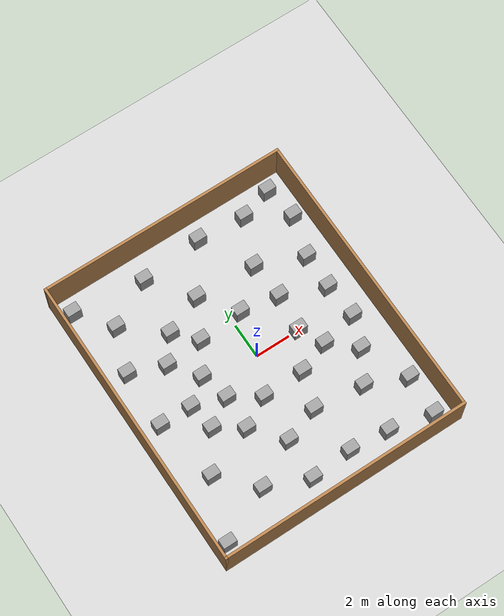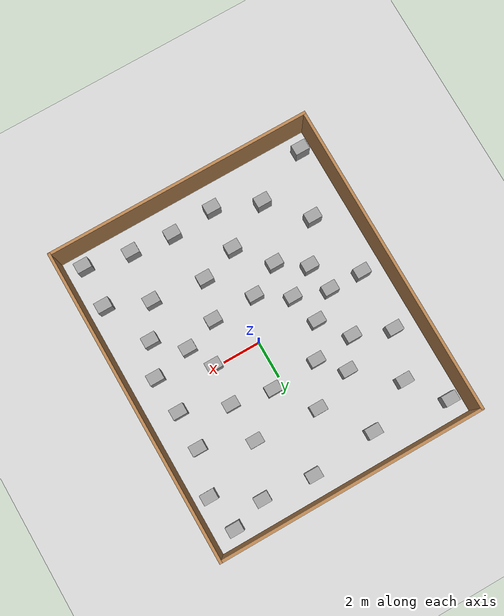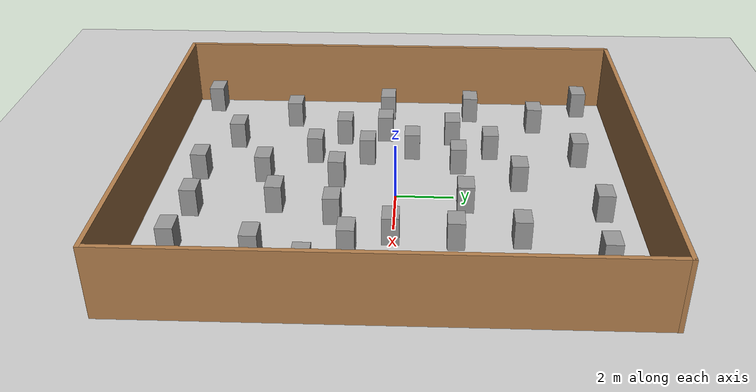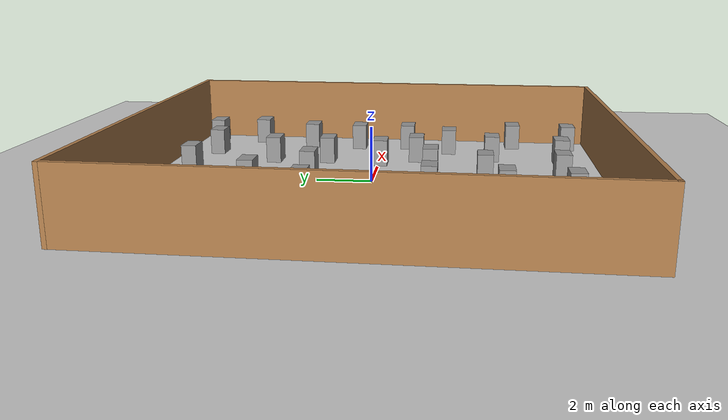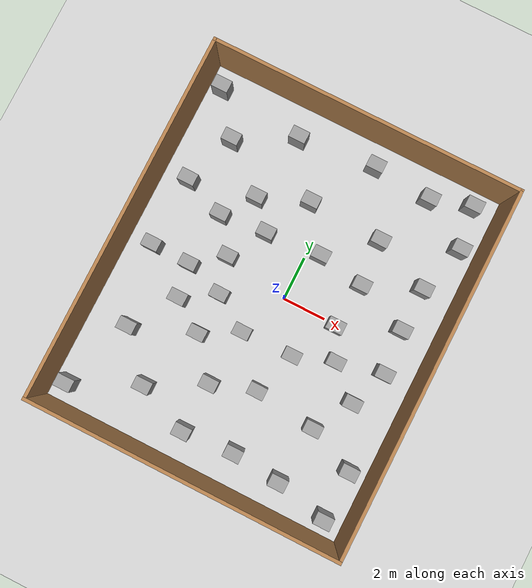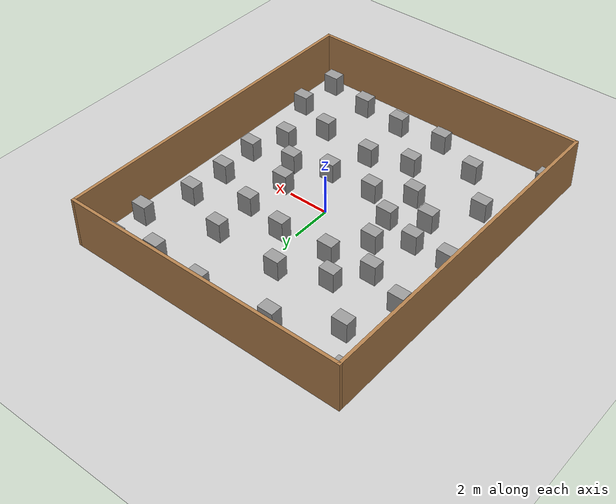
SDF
<sdf version="1.7">
 <world name="default">
  <model name="ground_plane">
   <static>1</static>
   <link name="link">
    <collision name="collision">
     <geometry><plane><normal>0 0 1</normal><size>100 100</size></plane></geometry>
     <surface><friction><ode><mu>100</mu><mu2>50</mu2></ode></friction></surface>
    </collision>
    <visual name="visual">
     <cast_shadows>0</cast_shadows>
     <geometry><plane><normal>0 0 1</normal><size>100 100</size></plane></geometry>
     <material>
      <script><uri>file://media/materials/scripts/gazebo.material</uri><name>Gazebo/Grey</name></script>
     </material>
    </visual>
   </link>
  </model>
  <light name="sun" type="directional">
   <pose>0 0 10 0 -0 0</pose>
   <diffuse>0.8 0.8 0.8 1</diffuse>
   <specular>0.2 0.2 0.2 1</specular>
   <attenuation>
    <range>1000</range>
    <constant>0.9</constant>
    <linear>0.01</linear>
    <quadratic>0.001</quadratic>
   </attenuation>
   <direction>-0.5 0.1 -0.9</direction>
   <spot><inner_angle>0</inner_angle><outer_angle>0</outer_angle><falloff>0</falloff></spot>
  </light>
  <scene><shadows>0</shadows><ambient>0.4 0.4 0.4 1</ambient><background>0.7 0.7 0.7 1</background></scene>
  <physics type="ode">
   <real_time_update_rate>1000</real_time_update_rate>
   <max_step_size>0.001</max_step_size>
   <real_time_factor>1</real_time_factor>
   <ode>
    <solver>
     <type>quick</type>
     <iters>150</iters>
     <precon_iters>0</precon_iters>
     <sor>1.4</sor>
     <use_dynamic_moi_rescaling>1</use_dynamic_moi_rescaling>
    </solver>
    <constraints>
     <cfm>1e-05</cfm>
     <erp>0.2</erp>
     <contact_max_correcting_vel>2000</contact_max_correcting_vel>
     <contact_surface_layer>0.01</contact_surface_layer>
    </constraints>
   </ode>
  </physics>
  <gravity>0 0 -9.8</gravity>
  <magnetic_field>6e-06 2.3e-05 -4.2e-05</magnetic_field>
  <atmosphere type="adiabatic"/>
  <audio><device>default</device></audio>
  <spherical_coordinates>
   <surface_model>EARTH_WGS84</surface_model>
   <latitude_deg>0</latitude_deg>
   <longitude_deg>0</longitude_deg>
   <elevation>0</elevation>
   <heading_deg>0</heading_deg>
  </spherical_coordinates>
  <model name="newest_2">
   <pose>-0.34072 -0.12847 0 0 -0 0</pose>
   <link name="Wall_10">
    <collision name="Wall_10_Collision">
     <geometry><box><size>14.25 0.15 2.5</size></box></geometry>
     <pose>0 0 1.25 0 -0 0</pose>
    </collision>
    <visual name="Wall_10_Visual">
     <pose>0 0 1.25 0 -0 0</pose>
     <geometry><box><size>14.25 0.15 2.5</size></box></geometry>
     <material>
      <script><uri>file://media/materials/scripts/gazebo.material</uri><name>Gazebo/Wood</name></script>
      <ambient>1 1 1 1</ambient>
     </material>
     <meta><layer>0</layer></meta>
    </visual>
    <pose>-0 8.3 0 0 -0 3.14159</pose>
   </link>
   <link name="Wall_7">
    <collision name="Wall_7_Collision">
     <geometry><box><size>16.75 0.15 2.5</size></box></geometry>
     <pose>0 0 1.25 0 -0 0</pose>
    </collision>
    <visual name="Wall_7_Visual">
     <pose>0 0 1.25 0 -0 0</pose>
     <geometry><box><size>16.75 0.15 2.5</size></box></geometry>
     <material>
      <script><uri>file://media/materials/scripts/gazebo.material</uri><name>Gazebo/Wood</name></script>
      <ambient>1 1 1 1</ambient>
     </material>
     <meta><layer>0</layer></meta>
    </visual>
    <pose>-7.05 0 0 0 -0 -1.5708</pose>
   </link>
   <link name="Wall_8">
    <collision name="Wall_8_Collision">
     <geometry><box><size>14.25 0.15 2.5</size></box></geometry>
     <pose>0 0 1.25 0 -0 0</pose>
    </collision>
    <visual name="Wall_8_Visual">
     <pose>0 0 1.25 0 -0 0</pose>
     <geometry><box><size>14.25 0.15 2.5</size></box></geometry>
     <material>
      <script><uri>file://media/materials/scripts/gazebo.material</uri><name>Gazebo/Wood</name></script>
      <ambient>1 1 1 1</ambient>
     </material>
     <meta><layer>0</layer></meta>
    </visual>
    <pose>-0 -8.3 0 0 -0 0</pose>
   </link>
   <link name="Wall_9">
    <collision name="Wall_9_Collision">
     <geometry><box><size>16.75 0.15 2.5</size></box></geometry>
     <pose>0 0 1.25 0 -0 0</pose>
    </collision>
    <visual name="Wall_9_Visual">
     <pose>0 0 1.25 0 -0 0</pose>
     <geometry><box><size>16.75 0.15 2.5</size></box></geometry>
     <material>
      <script><uri>file://media/materials/scripts/gazebo.material</uri><name>Gazebo/Wood</name></script>
      <ambient>1 1 1 1</ambient>
     </material>
     <meta><layer>0</layer></meta>
    </visual>
    <pose>7.05 0 0 0 -0 1.5708</pose>
   </link>
   <static>1</static>
  </model>
  <model name="unit_box">
   <pose>2.51125 -0.074003 0.5 0 -0 0</pose>
   <link name="link">
    <inertial>
     <mass>1</mass>
     <inertia>
      <ixx>0.166667</ixx>
      <ixy>0</ixy>
      <ixz>0</ixz>
      <iyy>0.166667</iyy>
      <iyz>0</iyz>
      <izz>0.166667</izz>
     </inertia>
    </inertial>
    <collision name="collision"><geometry><box><size>0.773906 0.563056 1</size></box></geometry></collision>
    <visual name="visual">
     <geometry><box><size>0.773906 0.563056 1</size></box></geometry>
     <material>
      <script><name>Gazebo/Grey</name><uri>file://media/materials/scripts/gazebo.material</uri></script>
     </material>
    </visual>
   </link>
  </model>
  <model name="unit_box_clone">
   <pose>1.4143 -2.05322 0.5 0 -0 0</pose>
   <link name="link">
    <inertial>
     <mass>1</mass>
     <inertia>
      <ixx>0.166667</ixx>
      <ixy>0</ixy>
      <ixz>0</ixz>
      <iyy>0.166667</iyy>
      <iyz>0</iyz>
      <izz>0.166667</izz>
     </inertia>
    </inertial>
    <collision name="collision"><geometry><box><size>0.773906 0.563056 1</size></box></geometry></collision>
    <visual name="visual">
     <geometry><box><size>0.773906 0.563056 1</size></box></geometry>
     <material>
      <script><name>Gazebo/Grey</name><uri>file://media/materials/scripts/gazebo.material</uri></script>
     </material>
    </visual>
   </link>
  </model>
  <model name="unit_box_clone_0">
   <pose>-0.954458 -2.10401 0.5 0 -0 0</pose>
   <link name="link">
    <inertial>
     <mass>1</mass>
     <inertia>
      <ixx>0.166667</ixx>
      <ixy>0</ixy>
      <ixz>0</ixz>
      <iyy>0.166667</iyy>
      <iyz>0</iyz>
      <izz>0.166667</izz>
     </inertia>
    </inertial>
    <collision name="collision"><geometry><box><size>0.773906 0.563056 1</size></box></geometry></collision>
    <visual name="visual">
     <geometry><box><size>0.773906 0.563056 1</size></box></geometry>
     <material>
      <script><name>Gazebo/Grey</name><uri>file://media/materials/scripts/gazebo.material</uri></script>
     </material>
    </visual>
   </link>
  </model>
  <model name="unit_box_clone_1">
   <pose>-2.55974 -1.09793 0.5 0 -0 0</pose>
   <link name="link">
    <inertial>
     <mass>1</mass>
     <inertia>
      <ixx>0.166667</ixx>
      <ixy>0</ixy>
      <ixz>0</ixz>
      <iyy>0.166667</iyy>
      <iyz>0</iyz>
      <izz>0.166667</izz>
     </inertia>
    </inertial>
    <collision name="collision"><geometry><box><size>0.773906 0.563056 1</size></box></geometry></collision>
    <visual name="visual">
     <geometry><box><size>0.773906 0.563056 1</size></box></geometry>
     <material>
      <script><name>Gazebo/Grey</name><uri>file://media/materials/scripts/gazebo.material</uri></script>
     </material>
    </visual>
   </link>
  </model>
  <model name="unit_box_clone_2">
   <pose>-2.98977 0.526939 0.5 0 -0 0</pose>
   <link name="link">
    <inertial>
     <mass>1</mass>
     <inertia>
      <ixx>0.166667</ixx>
      <ixy>0</ixy>
      <ixz>0</ixz>
      <iyy>0.166667</iyy>
      <iyz>0</iyz>
      <izz>0.166667</izz>
     </inertia>
    </inertial>
    <collision name="collision"><geometry><box><size>0.773906 0.563056 1</size></box></geometry></collision>
    <visual name="visual">
     <geometry><box><size>0.773906 0.563056 1</size></box></geometry>
     <material>
      <script><name>Gazebo/Grey</name><uri>file://media/materials/scripts/gazebo.material</uri></script>
     </material>
    </visual>
   </link>
  </model>
  <model name="unit_box_clone_3">
   <pose>-1.98279 2.19945 0.5 0 -0 0</pose>
   <link name="link">
    <inertial>
     <mass>1</mass>
     <inertia>
      <ixx>0.166667</ixx>
      <ixy>0</ixy>
      <ixz>0</ixz>
      <iyy>0.166667</iyy>
      <iyz>0</iyz>
      <izz>0.166667</izz>
     </inertia>
    </inertial>
    <collision name="collision"><geometry><box><size>0.773906 0.563056 1</size></box></geometry></collision>
    <visual name="visual">
     <geometry><box><size>0.773906 0.563056 1</size></box></geometry>
     <material>
      <script><name>Gazebo/Grey</name><uri>file://media/materials/scripts/gazebo.material</uri></script>
     </material>
    </visual>
   </link>
  </model>
  <model name="unit_box_clone_4">
   <pose>0.569075 2.38315 0.5 0 -0 0</pose>
   <link name="link">
    <inertial>
     <mass>1</mass>
     <inertia>
      <ixx>0.166667</ixx>
      <ixy>0</ixy>
      <ixz>0</ixz>
      <iyy>0.166667</iyy>
      <iyz>0</iyz>
      <izz>0.166667</izz>
     </inertia>
    </inertial>
    <collision name="collision"><geometry><box><size>0.773906 0.563056 1</size></box></geometry></collision>
    <visual name="visual">
     <geometry><box><size>0.773906 0.563056 1</size></box></geometry>
     <material>
      <script><name>Gazebo/Grey</name><uri>file://media/materials/scripts/gazebo.material</uri></script>
     </material>
    </visual>
   </link>
  </model>
  <model name="unit_box_clone_5">
   <pose>2.71855 2.0114 0.5 0 -0 0</pose>
   <link name="link">
    <inertial>
     <mass>1</mass>
     <inertia>
      <ixx>0.166667</ixx>
      <ixy>0</ixy>
      <ixz>0</ixz>
      <iyy>0.166667</iyy>
      <iyz>0</iyz>
      <izz>0.166667</izz>
     </inertia>
    </inertial>
    <collision name="collision"><geometry><box><size>0.773906 0.563056 1</size></box></geometry></collision>
    <visual name="visual">
     <geometry><box><size>0.773906 0.563056 1</size></box></geometry>
     <material>
      <script><name>Gazebo/Grey</name><uri>file://media/materials/scripts/gazebo.material</uri></script>
     </material>
    </visual>
   </link>
  </model>
  <model name="unit_box_clone_6">
   <pose>-0.867548 4.29608 0.5 0 -0 0</pose>
   <link name="link">
    <inertial>
     <mass>1</mass>
     <inertia>
      <ixx>0.166667</ixx>
      <ixy>0</ixy>
      <ixz>0</ixz>
      <iyy>0.166667</iyy>
      <iyz>0</iyz>
      <izz>0.166667</izz>
     </inertia>
    </inertial>
    <collision name="collision"><geometry><box><size>0.773906 0.563056 1</size></box></geometry></collision>
    <visual name="visual">
     <geometry><box><size>0.773906 0.563056 1</size></box></geometry>
     <material>
      <script><name>Gazebo/Grey</name><uri>file://media/materials/scripts/gazebo.material</uri></script>
     </material>
    </visual>
   </link>
  </model>
  <model name="unit_box_clone_7">
   <pose>-3.06766 3.40167 0.5 0 -0 0</pose>
   <link name="link">
    <inertial>
     <mass>1</mass>
     <inertia>
      <ixx>0.166667</ixx>
      <ixy>0</ixy>
      <ixz>0</ixz>
      <iyy>0.166667</iyy>
      <iyz>0</iyz>
      <izz>0.166667</izz>
     </inertia>
    </inertial>
    <collision name="collision"><geometry><box><size>0.773906 0.563056 1</size></box></geometry></collision>
    <visual name="visual">
     <geometry><box><size>0.773906 0.563056 1</size></box></geometry>
     <material>
      <script><name>Gazebo/Grey</name><uri>file://media/materials/scripts/gazebo.material</uri></script>
     </material>
    </visual>
   </link>
  </model>
  <model name="unit_box_clone_8">
   <pose>2.56959 4.11985 0.5 0 -0 0</pose>
   <link name="link">
    <inertial>
     <mass>1</mass>
     <inertia>
      <ixx>0.166667</ixx>
      <ixy>0</ixy>
      <ixz>0</ixz>
      <iyy>0.166667</iyy>
      <iyz>0</iyz>
      <izz>0.166667</izz>
     </inertia>
    </inertial>
    <collision name="collision"><geometry><box><size>0.773906 0.563056 1</size></box></geometry></collision>
    <visual name="visual">
     <geometry><box><size>0.773906 0.563056 1</size></box></geometry>
     <material>
      <script><name>Gazebo/Grey</name><uri>file://media/materials/scripts/gazebo.material</uri></script>
     </material>
    </visual>
   </link>
  </model>
  <model name="unit_box_clone_9">
   <pose>5.11565 1.05356 0.5 0 -0 0</pose>
   <link name="link">
    <inertial>
     <mass>1</mass>
     <inertia>
      <ixx>0.166667</ixx>
      <ixy>0</ixy>
      <ixz>0</ixz>
      <iyy>0.166667</iyy>
      <iyz>0</iyz>
      <izz>0.166667</izz>
     </inertia>
    </inertial>
    <collision name="collision"><geometry><box><size>0.773906 0.563056 1</size></box></geometry></collision>
    <visual name="visual">
     <geometry><box><size>0.773906 0.563056 1</size></box></geometry>
     <material>
      <script><name>Gazebo/Grey</name><uri>file://media/materials/scripts/gazebo.material</uri></script>
     </material>
    </visual>
   </link>
  </model>
  <model name="unit_box_clone_10">
   <pose>4.6047 -2.69304 0.5 0 -0 0</pose>
   <link name="link">
    <inertial>
     <mass>1</mass>
     <inertia>
      <ixx>0.166667</ixx>
      <ixy>0</ixy>
      <ixz>0</ixz>
      <iyy>0.166667</iyy>
      <iyz>0</iyz>
      <izz>0.166667</izz>
     </inertia>
    </inertial>
    <collision name="collision"><geometry><box><size>0.773906 0.563056 1</size></box></geometry></collision>
    <visual name="visual">
     <geometry><box><size>0.773906 0.563056 1</size></box></geometry>
     <material>
      <script><name>Gazebo/Grey</name><uri>file://media/materials/scripts/gazebo.material</uri></script>
     </material>
    </visual>
   </link>
  </model>
  <model name="unit_box_clone_11">
   <pose>-2.6225 -3.01848 0.5 0 -0 0</pose>
   <link name="link">
    <inertial>
     <mass>1</mass>
     <inertia>
      <ixx>0.166667</ixx>
      <ixy>0</ixy>
      <ixz>0</ixz>
      <iyy>0.166667</iyy>
      <iyz>0</iyz>
      <izz>0.166667</izz>
     </inertia>
    </inertial>
    <collision name="collision"><geometry><box><size>0.773906 0.563056 1</size></box></geometry></collision>
    <visual name="visual">
     <geometry><box><size>0.773906 0.563056 1</size></box></geometry>
     <material>
      <script><name>Gazebo/Grey</name><uri>file://media/materials/scripts/gazebo.material</uri></script>
     </material>
    </visual>
   </link>
  </model>
  <model name="unit_box_clone_12">
   <pose>0.76416 -4.05393 0.5 0 -0 0</pose>
   <link name="link">
    <inertial>
     <mass>1</mass>
     <inertia>
      <ixx>0.166667</ixx>
      <ixy>0</ixy>
      <ixz>0</ixz>
      <iyy>0.166667</iyy>
      <iyz>0</iyz>
      <izz>0.166667</izz>
     </inertia>
    </inertial>
    <collision name="collision"><geometry><box><size>0.773906 0.563056 1</size></box></geometry></collision>
    <visual name="visual">
     <geometry><box><size>0.773906 0.563056 1</size></box></geometry>
     <material>
      <script><name>Gazebo/Grey</name><uri>file://media/materials/scripts/gazebo.material</uri></script>
     </material>
    </visual>
   </link>
  </model>
  <model name="unit_box_clone_13">
   <pose>-4.34145 -0.509733 0.5 0 -0 0</pose>
   <link name="link">
    <inertial>
     <mass>1</mass>
     <inertia>
      <ixx>0.166667</ixx>
      <ixy>0</ixy>
      <ixz>0</ixz>
      <iyy>0.166667</iyy>
      <iyz>0</iyz>
      <izz>0.166667</izz>
     </inertia>
    </inertial>
    <collision name="collision"><geometry><box><size>0.773906 0.563056 1</size></box></geometry></collision>
    <visual name="visual">
     <geometry><box><size>0.773906 0.563056 1</size></box></geometry>
     <material>
      <script><name>Gazebo/Grey</name><uri>file://media/materials/scripts/gazebo.material</uri></script>
     </material>
    </visual>
   </link>
  </model>
  <model name="unit_box_clone_14">
   <pose>-4.12251 2.02567 0.5 0 -0 0</pose>
   <link name="link">
    <inertial>
     <mass>1</mass>
     <inertia>
      <ixx>0.166667</ixx>
      <ixy>0</ixy>
      <ixz>0</ixz>
      <iyy>0.166667</iyy>
      <iyz>0</iyz>
      <izz>0.166667</izz>
     </inertia>
    </inertial>
    <collision name="collision"><geometry><box><size>0.773906 0.563056 1</size></box></geometry></collision>
    <visual name="visual">
     <geometry><box><size>0.773906 0.563056 1</size></box></geometry>
     <material>
      <script><name>Gazebo/Grey</name><uri>file://media/materials/scripts/gazebo.material</uri></script>
     </material>
    </visual>
   </link>
  </model>
  <model name="unit_box_clone_15">
   <pose>-4.07268 -2.03845 0.5 0 -0 0</pose>
   <link name="link">
    <inertial>
     <mass>1</mass>
     <inertia>
      <ixx>0.166667</ixx>
      <ixy>0</ixy>
      <ixz>0</ixz>
      <iyy>0.166667</iyy>
      <iyz>0</iyz>
      <izz>0.166667</izz>
     </inertia>
    </inertial>
    <collision name="collision"><geometry><box><size>0.773906 0.563056 1</size></box></geometry></collision>
    <visual name="visual">
     <geometry><box><size>0.773906 0.563056 1</size></box></geometry>
     <material>
      <script><name>Gazebo/Grey</name><uri>file://media/materials/scripts/gazebo.material</uri></script>
     </material>
    </visual>
   </link>
  </model>
  <model name="unit_box_clone_16">
   <pose>5.15688 3.06236 0.5 0 -0 0</pose>
   <link name="link">
    <inertial>
     <mass>1</mass>
     <inertia>
      <ixx>0.166667</ixx>
      <ixy>0</ixy>
      <ixz>0</ixz>
      <iyy>0.166667</iyy>
      <iyz>0</iyz>
      <izz>0.166667</izz>
     </inertia>
    </inertial>
    <collision name="collision"><geometry><box><size>0.773906 0.563056 1</size></box></geometry></collision>
    <visual name="visual">
     <geometry><box><size>0.773906 0.563056 1</size></box></geometry>
     <material>
      <script><name>Gazebo/Grey</name><uri>file://media/materials/scripts/gazebo.material</uri></script>
     </material>
    </visual>
   </link>
  </model>
  <model name="unit_box_clone_17">
   <pose>5.28031 -0.959187 0.5 0 -0 0</pose>
   <link name="link">
    <inertial>
     <mass>1</mass>
     <inertia>
      <ixx>0.166667</ixx>
      <ixy>0</ixy>
      <ixz>0</ixz>
      <iyy>0.166667</iyy>
      <iyz>0</iyz>
      <izz>0.166667</izz>
     </inertia>
    </inertial>
    <collision name="collision"><geometry><box><size>0.773906 0.563056 1</size></box></geometry></collision>
    <visual name="visual">
     <geometry><box><size>0.773906 0.563056 1</size></box></geometry>
     <material>
      <script><name>Gazebo/Grey</name><uri>file://media/materials/scripts/gazebo.material</uri></script>
     </material>
    </visual>
   </link>
  </model>
  <model name="unit_box_clone_18">
   <pose>3.58409 -4.39894 0.5 0 -0 0</pose>
   <link name="link">
    <inertial>
     <mass>1</mass>
     <inertia>
      <ixx>0.166667</ixx>
      <ixy>0</ixy>
      <ixz>0</ixz>
      <iyy>0.166667</iyy>
      <iyz>0</iyz>
      <izz>0.166667</izz>
     </inertia>
    </inertial>
    <collision name="collision"><geometry><box><size>0.773906 0.563056 1</size></box></geometry></collision>
    <visual name="visual">
     <geometry><box><size>0.773906 0.563056 1</size></box></geometry>
     <material>
      <script><name>Gazebo/Grey</name><uri>file://media/materials/scripts/gazebo.material</uri></script>
     </material>
    </visual>
   </link>
  </model>
  <model name="unit_box_clone_19">
   <pose>-1.20101 -4.71284 0.5 0 -0 0</pose>
   <link name="link">
    <inertial>
     <mass>1</mass>
     <inertia>
      <ixx>0.166667</ixx>
      <ixy>0</ixy>
      <ixz>0</ixz>
      <iyy>0.166667</iyy>
      <iyz>0</iyz>
      <izz>0.166667</izz>
     </inertia>
    </inertial>
    <collision name="collision"><geometry><box><size>0.773906 0.563056 1</size></box></geometry></collision>
    <visual name="visual">
     <geometry><box><size>0.773906 0.563056 1</size></box></geometry>
     <material>
      <script><name>Gazebo/Grey</name><uri>file://media/materials/scripts/gazebo.material</uri></script>
     </material>
    </visual>
   </link>
  </model>
  <model name="unit_box_clone_20">
   <pose>3.19763 -1.44089 0.5 0 -0 0</pose>
   <link name="link">
    <inertial>
     <mass>1</mass>
     <inertia>
      <ixx>0.166667</ixx>
      <ixy>0</ixy>
      <ixz>0</ixz>
      <iyy>0.166667</iyy>
      <iyz>0</iyz>
      <izz>0.166667</izz>
     </inertia>
    </inertial>
    <collision name="collision"><geometry><box><size>0.773906 0.563056 1</size></box></geometry></collision>
    <visual name="visual">
     <geometry><box><size>0.773906 0.563056 1</size></box></geometry>
     <material>
      <script><name>Gazebo/Grey</name><uri>file://media/materials/scripts/gazebo.material</uri></script>
     </material>
    </visual>
   </link>
  </model>
  <model name="unit_box_clone_21">
   <pose>5.51062 7.29061 0.5 0 -0 0</pose>
   <link name="link">
    <inertial>
     <mass>1</mass>
     <inertia>
      <ixx>0.166667</ixx>
      <ixy>0</ixy>
      <ixz>0</ixz>
      <iyy>0.166667</iyy>
      <iyz>0</iyz>
      <izz>0.166667</izz>
     </inertia>
    </inertial>
    <collision name="collision"><geometry><box><size>0.773906 0.563056 1</size></box></geometry></collision>
    <visual name="visual">
     <geometry><box><size>0.773906 0.563056 1</size></box></geometry>
     <material>
      <script><name>Gazebo/Grey</name><uri>file://media/materials/scripts/gazebo.material</uri></script>
     </material>
    </visual>
   </link>
  </model>
  <model name="unit_box_clone_22">
   <pose>5.689 -7.5878 0.5 0 -0 0</pose>
   <link name="link">
    <inertial>
     <mass>1</mass>
     <inertia>
      <ixx>0.166667</ixx>
      <ixy>0</ixy>
      <ixz>0</ixz>
      <iyy>0.166667</iyy>
      <iyz>0</iyz>
      <izz>0.166667</izz>
     </inertia>
    </inertial>
    <collision name="collision"><geometry><box><size>0.773906 0.563056 1</size></box></geometry></collision>
    <visual name="visual">
     <geometry><box><size>0.773906 0.563056 1</size></box></geometry>
     <material>
      <script><name>Gazebo/Grey</name><uri>file://media/materials/scripts/gazebo.material</uri></script>
     </material>
    </visual>
   </link>
  </model>
  <model name="unit_box_clone_23">
   <pose>-6.65323 7.09133 0.5 0 -0 0</pose>
   <link name="link">
    <inertial>
     <mass>1</mass>
     <inertia>
      <ixx>0.166667</ixx>
      <ixy>0</ixy>
      <ixz>0</ixz>
      <iyy>0.166667</iyy>
      <iyz>0</iyz>
      <izz>0.166667</izz>
     </inertia>
    </inertial>
    <collision name="collision"><geometry><box><size>0.773906 0.563056 1</size></box></geometry></collision>
    <visual name="visual">
     <geometry><box><size>0.773906 0.563056 1</size></box></geometry>
     <material>
      <script><name>Gazebo/Grey</name><uri>file://media/materials/scripts/gazebo.material</uri></script>
     </material>
    </visual>
   </link>
  </model>
  <model name="unit_box_clone_24">
   <pose>-6.67296 -7.4407 0.5 0 -0 0</pose>
   <link name="link">
    <inertial>
     <mass>1</mass>
     <inertia>
      <ixx>0.166667</ixx>
      <ixy>0</ixy>
      <ixz>0</ixz>
      <iyy>0.166667</iyy>
      <iyz>0</iyz>
      <izz>0.166667</izz>
     </inertia>
    </inertial>
    <collision name="collision"><geometry><box><size>0.773906 0.563056 1</size></box></geometry></collision>
    <visual name="visual">
     <geometry><box><size>0.773906 0.563056 1</size></box></geometry>
     <material>
      <script><name>Gazebo/Grey</name><uri>file://media/materials/scripts/gazebo.material</uri></script>
     </material>
    </visual>
   </link>
  </model>
  <model name="unit_box_clone_25">
   <pose>-5.44564 -4.09751 0.5 0 -0 0</pose>
   <link name="link">
    <inertial>
     <mass>1</mass>
     <inertia>
      <ixx>0.166667</ixx>
      <ixy>0</ixy>
      <ixz>0</ixz>
      <iyy>0.166667</iyy>
      <iyz>0</iyz>
      <izz>0.166667</izz>
     </inertia>
    </inertial>
    <collision name="collision"><geometry><box><size>0.773906 0.563056 1</size></box></geometry></collision>
    <visual name="visual">
     <geometry><box><size>0.773906 0.563056 1</size></box></geometry>
     <material>
      <script><name>Gazebo/Grey</name><uri>file://media/materials/scripts/gazebo.material</uri></script>
     </material>
    </visual>
   </link>
  </model>
  <model name="unit_box_clone_26">
   <pose>-3.66846 -6.04262 0.5 0 -0 0</pose>
   <link name="link">
    <inertial>
     <mass>1</mass>
     <inertia>
      <ixx>0.166667</ixx>
      <ixy>0</ixy>
      <ixz>0</ixz>
      <iyy>0.166667</iyy>
      <iyz>0</iyz>
      <izz>0.166667</izz>
     </inertia>
    </inertial>
    <collision name="collision"><geometry><box><size>0.773906 0.563056 1</size></box></geometry></collision>
    <visual name="visual">
     <geometry><box><size>0.773906 0.563056 1</size></box></geometry>
     <material>
      <script><name>Gazebo/Grey</name><uri>file://media/materials/scripts/gazebo.material</uri></script>
     </material>
    </visual>
   </link>
  </model>
  <model name="unit_box_clone_27">
   <pose>3.285 -7.06076 0.5 0 -0 0</pose>
   <link name="link">
    <inertial>
     <mass>1</mass>
     <inertia>
      <ixx>0.166667</ixx>
      <ixy>0</ixy>
      <ixz>0</ixz>
      <iyy>0.166667</iyy>
      <iyz>0</iyz>
      <izz>0.166667</izz>
     </inertia>
    </inertial>
    <collision name="collision"><geometry><box><size>0.773906 0.563056 1</size></box></geometry></collision>
    <visual name="visual">
     <geometry><box><size>0.773906 0.563056 1</size></box></geometry>
     <material>
      <script><name>Gazebo/Grey</name><uri>file://media/materials/scripts/gazebo.material</uri></script>
     </material>
    </visual>
   </link>
  </model>
  <model name="unit_box_clone_28">
   <pose>5.76476 -5.33224 0.5 0 -0 0</pose>
   <link name="link">
    <inertial>
     <mass>1</mass>
     <inertia>
      <ixx>0.166667</ixx>
      <ixy>0</ixy>
      <ixz>0</ixz>
      <iyy>0.166667</iyy>
      <iyz>0</iyz>
      <izz>0.166667</izz>
     </inertia>
    </inertial>
    <collision name="collision"><geometry><box><size>0.773906 0.563056 1</size></box></geometry></collision>
    <visual name="visual">
     <geometry><box><size>0.773906 0.563056 1</size></box></geometry>
     <material>
      <script><name>Gazebo/Grey</name><uri>file://media/materials/scripts/gazebo.material</uri></script>
     </material>
    </visual>
   </link>
  </model>
  <model name="unit_box_clone_29">
   <pose>3.66854 6.73251 0.5 0 -0 0</pose>
   <link name="link">
    <inertial>
     <mass>1</mass>
     <inertia>
      <ixx>0.166667</ixx>
      <ixy>0</ixy>
      <ixz>0</ixz>
      <iyy>0.166667</iyy>
      <iyz>0</iyz>
      <izz>0.166667</izz>
     </inertia>
    </inertial>
    <collision name="collision"><geometry><box><size>0.773906 0.563056 1</size></box></geometry></collision>
    <visual name="visual">
     <geometry><box><size>0.773906 0.563056 1</size></box></geometry>
     <material>
      <script><name>Gazebo/Grey</name><uri>file://media/materials/scripts/gazebo.material</uri></script>
     </material>
    </visual>
   </link>
  </model>
  <model name="unit_box_clone_30">
   <pose>5.8317 5.35539 0.5 0 -0 0</pose>
   <link name="link">
    <inertial>
     <mass>1</mass>
     <inertia>
      <ixx>0.166667</ixx>
      <ixy>0</ixy>
      <ixz>0</ixz>
      <iyy>0.166667</iyy>
      <iyz>0</iyz>
      <izz>0.166667</izz>
     </inertia>
    </inertial>
    <collision name="collision"><geometry><box><size>0.773906 0.563056 1</size></box></geometry></collision>
    <visual name="visual">
     <geometry><box><size>0.773906 0.563056 1</size></box></geometry>
     <material>
      <script><name>Gazebo/Grey</name><uri>file://media/materials/scripts/gazebo.material</uri></script>
     </material>
    </visual>
   </link>
  </model>
  <model name="unit_box_clone_31">
   <pose>0.944337 6.96762 0.5 0 -0 0</pose>
   <link name="link">
    <inertial>
     <mass>1</mass>
     <inertia>
      <ixx>0.166667</ixx>
      <ixy>0</ixy>
      <ixz>0</ixz>
      <iyy>0.166667</iyy>
      <iyz>0</iyz>
      <izz>0.166667</izz>
     </inertia>
    </inertial>
    <collision name="collision"><geometry><box><size>0.773906 0.563056 1</size></box></geometry></collision>
    <visual name="visual">
     <geometry><box><size>0.773906 0.563056 1</size></box></geometry>
     <material>
      <script><name>Gazebo/Grey</name><uri>file://media/materials/scripts/gazebo.material</uri></script>
     </material>
    </visual>
   </link>
  </model>
  <model name="unit_box_clone_32">
   <pose>-2.62113 6.59939 0.5 0 -0 0</pose>
   <link name="link">
    <inertial>
     <mass>1</mass>
     <inertia>
      <ixx>0.166667</ixx>
      <ixy>0</ixy>
      <ixz>0</ixz>
      <iyy>0.166667</iyy>
      <iyz>0</iyz>
      <izz>0.166667</izz>
     </inertia>
    </inertial>
    <collision name="collision"><geometry><box><size>0.773906 0.563056 1</size></box></geometry></collision>
    <visual name="visual">
     <geometry><box><size>0.773906 0.563056 1</size></box></geometry>
     <material>
      <script><name>Gazebo/Grey</name><uri>file://media/materials/scripts/gazebo.material</uri></script>
     </material>
    </visual>
   </link>
  </model>
  <model name="unit_box_clone_33">
   <pose>-5.20348 5.19755 0.5 0 -0 0</pose>
   <link name="link">
    <inertial>
     <mass>1</mass>
     <inertia>
      <ixx>0.166667</ixx>
      <ixy>0</ixy>
      <ixz>0</ixz>
      <iyy>0.166667</iyy>
      <iyz>0</iyz>
      <izz>0.166667</izz>
     </inertia>
    </inertial>
    <collision name="collision"><geometry><box><size>0.773906 0.563056 1</size></box></geometry></collision>
    <visual name="visual">
     <geometry><box><size>0.773906 0.563056 1</size></box></geometry>
     <material>
      <script><name>Gazebo/Grey</name><uri>file://media/materials/scripts/gazebo.material</uri></script>
     </material>
    </visual>
   </link>
  </model>
  <model name="unit_box_clone_34">
   <pose>-6.07477 2.76677 0.5 0 -0 0</pose>
   <link name="link">
    <inertial>
     <mass>1</mass>
     <inertia>
      <ixx>0.166667</ixx>
      <ixy>0</ixy>
      <ixz>0</ixz>
      <iyy>0.166667</iyy>
      <iyz>0</iyz>
      <izz>0.166667</izz>
     </inertia>
    </inertial>
    <collision name="collision"><geometry><box><size>0.773906 0.563056 1</size></box></geometry></collision>
    <visual name="visual">
     <geometry><box><size>0.773906 0.563056 1</size></box></geometry>
     <material>
      <script><name>Gazebo/Grey</name><uri>file://media/materials/scripts/gazebo.material</uri></script>
     </material>
    </visual>
   </link>
  </model>
  <model name="unit_box_clone_35">
   <pose>-6.15314 -0.478338 0.5 0 -0 0</pose>
   <link name="link">
    <inertial>
     <mass>1</mass>
     <inertia>
      <ixx>0.166667</ixx>
      <ixy>0</ixy>
      <ixz>0</ixz>
      <iyy>0.166667</iyy>
      <iyz>0</iyz>
      <izz>0.166667</izz>
     </inertia>
    </inertial>
    <collision name="collision"><geometry><box><size>0.773906 0.563056 1</size></box></geometry></collision>
    <visual name="visual">
     <geometry><box><size>0.773906 0.563056 1</size></box></geometry>
     <material>
      <script><name>Gazebo/Grey</name><uri>file://media/materials/scripts/gazebo.material</uri></script>
     </material>
    </visual>
   </link>
  </model>
  <model name="unit_box_clone_36">
   <pose>-1.298 -7.00475 0.5 0 -0 0</pose>
   <link name="link">
    <inertial>
     <mass>1</mass>
     <inertia>
      <ixx>0.166667</ixx>
      <ixy>0</ixy>
      <ixz>0</ixz>
      <iyy>0.166667</iyy>
      <iyz>0</iyz>
      <izz>0.166667</izz>
     </inertia>
    </inertial>
    <collision name="collision"><geometry><box><size>0.773906 0.563056 1</size></box></geometry></collision>
    <visual name="visual">
     <geometry><box><size>0.773906 0.563056 1</size></box></geometry>
     <material>
      <script><name>Gazebo/Grey</name><uri>file://media/materials/scripts/gazebo.material</uri></script>
     </material>
    </visual>
   </link>
  </model>
  <model name="unit_box_clone_37">
   <pose>1.06007 -6.84107 0.5 0 -0 0</pose>
   <link name="link">
    <inertial>
     <mass>1</mass>
     <inertia>
      <ixx>0.166667</ixx>
      <ixy>0</ixy>
      <ixz>0</ixz>
      <iyy>0.166667</iyy>
      <iyz>0</iyz>
      <izz>0.166667</izz>
     </inertia>
    </inertial>
    <collision name="collision"><geometry><box><size>0.773906 0.563056 1</size></box></geometry></collision>
    <visual name="visual">
     <geometry><box><size>0.773906 0.563056 1</size></box></geometry>
     <material>
      <script><name>Gazebo/Grey</name><uri>file://media/materials/scripts/gazebo.material</uri></script>
     </material>
    </visual>
   </link>
  </model>
 </world>
</sdf>
